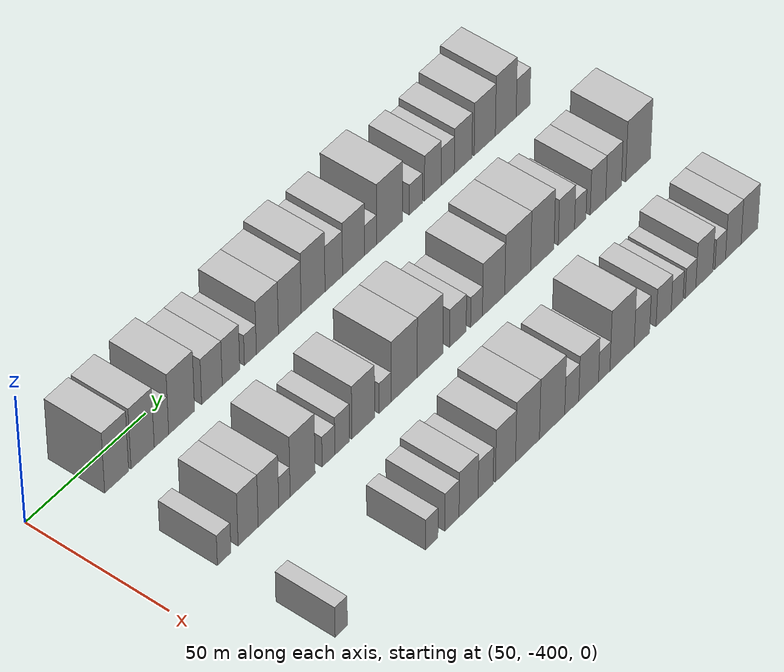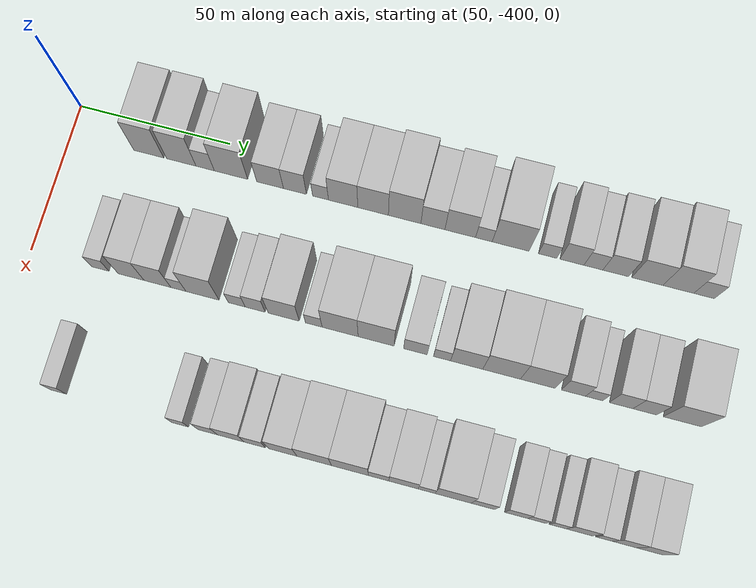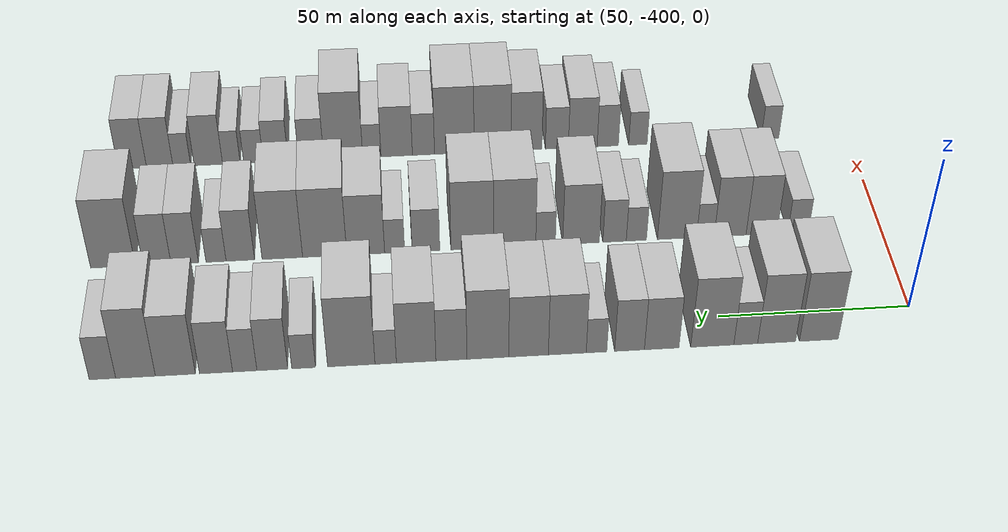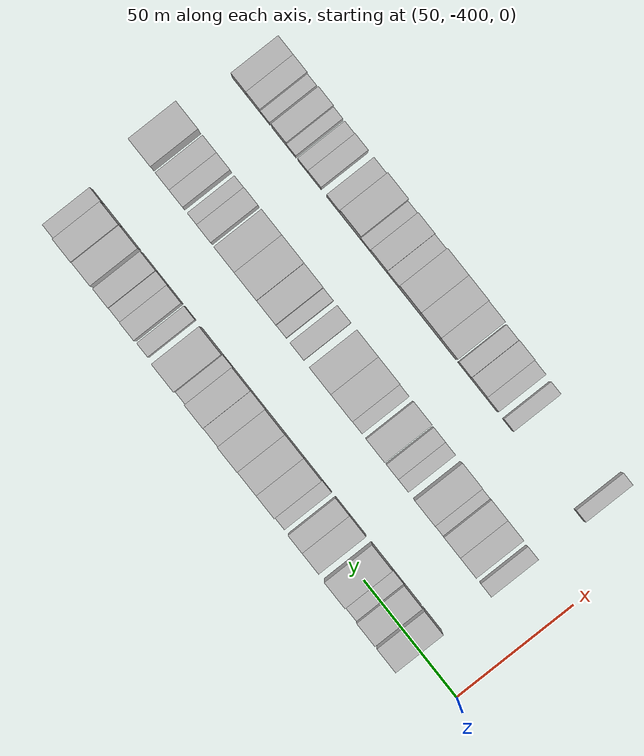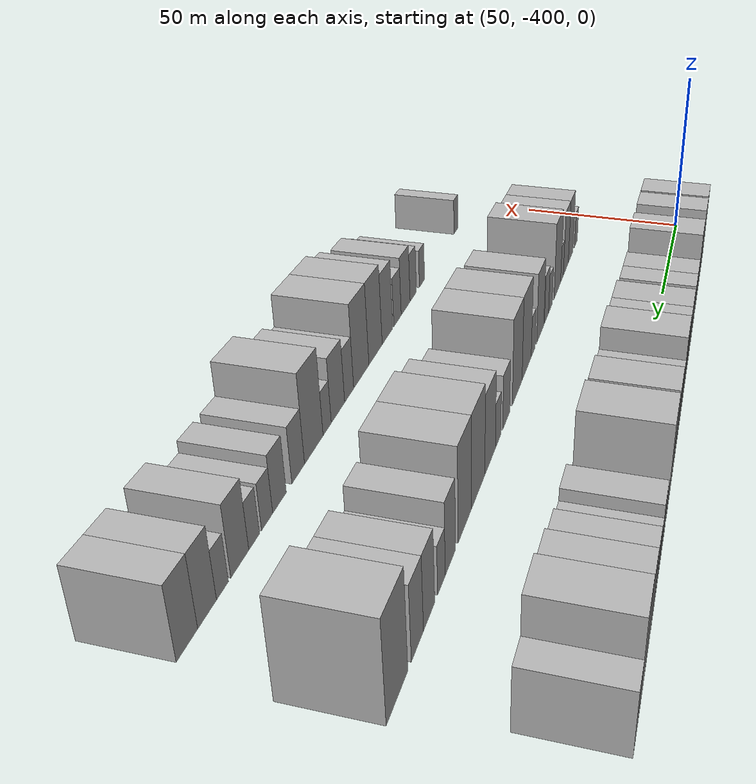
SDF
<sdf version="1.6">
 <world name="default">
  <model name="building_1">
   <static>1</static>
   <pose>50.0000 -374.0069 0 0.000000 0.000000 0.000000</pose>
   <link name="link">
    <pose>0 0 12.00 0 0 0</pose>
    <collision name="collision"><geometry><box><size>20.0000 9.9862 24.0000</size></box></geometry></collision>
    <visual name="visual">
     <cast_shadows>0</cast_shadows>
     <geometry><box><size>20.0000 9.9862 24.0000</size></box></geometry>
     <material>
      <script>
       <uri>model://HANNAS_wall/materials/scripts</uri>
       <uri>model://HANNAS_wall/materials/textures</uri>
       <name>vrc/HANNAS_wall</name>
      </script>
     </material>
    </visual>
   </link>
  </model>
  <model name="building_2">
   <static>1</static>
   <pose>50.0000 -363.1482 0 0.000000 0.000000 0.000000</pose>
   <link name="link">
    <pose>0 0 12.00 0 0 0</pose>
    <collision name="collision"><geometry><box><size>20.0000 9.7312 24.0000</size></box></geometry></collision>
    <visual name="visual">
     <cast_shadows>0</cast_shadows>
     <geometry><box><size>20.0000 9.7312 24.0000</size></box></geometry>
     <material>
      <script>
       <uri>model://HANNAS_wall/materials/scripts</uri>
       <uri>model://HANNAS_wall/materials/textures</uri>
       <name>vrc/HANNAS_wall</name>
      </script>
     </material>
    </visual>
   </link>
  </model>
  <model name="building_3">
   <static>1</static>
   <pose>50.0000 -355.2307 0 0.000000 0.000000 0.000000</pose>
   <link name="link">
    <pose>0 0 7.50 0 0 0</pose>
    <collision name="collision"><geometry><box><size>20.0000 6.1038 15.0000</size></box></geometry></collision>
    <visual name="visual">
     <cast_shadows>0</cast_shadows>
     <geometry><box><size>20.0000 6.1038 15.0000</size></box></geometry>
     <material>
      <script>
       <uri>model://HANNAS_wall/materials/scripts</uri>
       <uri>model://HANNAS_wall/materials/textures</uri>
       <name>vrc/HANNAS_wall</name>
      </script>
     </material>
    </visual>
   </link>
  </model>
  <model name="building_4">
   <static>1</static>
   <pose>50.0000 -346.6774 0 0.000000 0.000000 0.000000</pose>
   <link name="link">
    <pose>0 0 12.00 0 0 0</pose>
    <collision name="collision"><geometry><box><size>20.0000 11.0029 24.0000</size></box></geometry></collision>
    <visual name="visual">
     <cast_shadows>0</cast_shadows>
     <geometry><box><size>20.0000 11.0029 24.0000</size></box></geometry>
     <material>
      <script>
       <uri>model://HANNAS_wall/materials/scripts</uri>
       <uri>model://HANNAS_wall/materials/textures</uri>
       <name>vrc/HANNAS_wall</name>
      </script>
     </material>
    </visual>
   </link>
  </model>
  <model name="building_5">
   <static>1</static>
   <pose>50.0000 -333.7736 0 0.000000 0.000000 0.000000</pose>
   <link name="link">
    <pose>0 0 9.00 0 0 0</pose>
    <collision name="collision"><geometry><box><size>20.0000 8.8047 18.0000</size></box></geometry></collision>
    <visual name="visual">
     <cast_shadows>0</cast_shadows>
     <geometry><box><size>20.0000 8.8047 18.0000</size></box></geometry>
     <material>
      <script>
       <uri>model://HANNAS_wall/materials/scripts</uri>
       <uri>model://HANNAS_wall/materials/textures</uri>
       <name>vrc/HANNAS_wall</name>
      </script>
     </material>
    </visual>
   </link>
  </model>
  <model name="building_6">
   <static>1</static>
   <pose>50.0000 -325.5919 0 0.000000 0.000000 0.000000</pose>
   <link name="link">
    <pose>0 0 9.00 0 0 0</pose>
    <collision name="collision"><geometry><box><size>20.0000 7.5586 18.0000</size></box></geometry></collision>
    <visual name="visual">
     <cast_shadows>0</cast_shadows>
     <geometry><box><size>20.0000 7.5586 18.0000</size></box></geometry>
     <material>
      <script>
       <uri>model://HANNAS_wall/materials/scripts</uri>
       <uri>model://HANNAS_wall/materials/textures</uri>
       <name>vrc/HANNAS_wall</name>
      </script>
     </material>
    </visual>
   </link>
  </model>
  <model name="building_7">
   <static>1</static>
   <pose>50.0000 -317.2088 0 0.000000 0.000000 0.000000</pose>
   <link name="link">
    <pose>0 0 6.00 0 0 0</pose>
    <collision name="collision"><geometry><box><size>20.0000 5.2076 12.0000</size></box></geometry></collision>
    <visual name="visual">
     <cast_shadows>0</cast_shadows>
     <geometry><box><size>20.0000 5.2076 12.0000</size></box></geometry>
     <material>
      <script>
       <uri>model://HANNAS_wall/materials/scripts</uri>
       <uri>model://HANNAS_wall/materials/textures</uri>
       <name>vrc/HANNAS_wall</name>
      </script>
     </material>
    </visual>
   </link>
  </model>
  <model name="building_8">
   <static>1</static>
   <pose>50.0000 -309.8113 0 0.000000 0.000000 0.000000</pose>
   <link name="link">
    <pose>0 0 10.50 0 0 0</pose>
    <collision name="collision"><geometry><box><size>20.0000 9.5874 21.0000</size></box></geometry></collision>
    <visual name="visual">
     <cast_shadows>0</cast_shadows>
     <geometry><box><size>20.0000 9.5874 21.0000</size></box></geometry>
     <material>
      <script>
       <uri>model://HANNAS_wall/materials/scripts</uri>
       <uri>model://HANNAS_wall/materials/textures</uri>
       <name>vrc/HANNAS_wall</name>
      </script>
     </material>
    </visual>
   </link>
  </model>
  <model name="building_9">
   <static>1</static>
   <pose>50.0000 -300.0309 0 0.000000 0.000000 0.000000</pose>
   <link name="link">
    <pose>0 0 10.50 0 0 0</pose>
    <collision name="collision"><geometry><box><size>20.0000 9.9735 21.0000</size></box></geometry></collision>
    <visual name="visual">
     <cast_shadows>0</cast_shadows>
     <geometry><box><size>20.0000 9.9735 21.0000</size></box></geometry>
     <material>
      <script>
       <uri>model://HANNAS_wall/materials/scripts</uri>
       <uri>model://HANNAS_wall/materials/textures</uri>
       <name>vrc/HANNAS_wall</name>
      </script>
     </material>
    </visual>
   </link>
  </model>
  <model name="building_10">
   <static>1</static>
   <pose>50.0000 -289.7704 0 0.000000 0.000000 0.000000</pose>
   <link name="link">
    <pose>0 0 12.00 0 0 0</pose>
    <collision name="collision"><geometry><box><size>20.0000 10.5474 24.0000</size></box></geometry></collision>
    <visual name="visual">
     <cast_shadows>0</cast_shadows>
     <geometry><box><size>20.0000 10.5474 24.0000</size></box></geometry>
     <material>
      <script>
       <uri>model://HANNAS_wall/materials/scripts</uri>
       <uri>model://HANNAS_wall/materials/textures</uri>
       <name>vrc/HANNAS_wall</name>
      </script>
     </material>
    </visual>
   </link>
  </model>
  <model name="building_11">
   <static>1</static>
   <pose>50.0000 -280.6086 0 0.000000 0.000000 0.000000</pose>
   <link name="link">
    <pose>0 0 9.00 0 0 0</pose>
    <collision name="collision"><geometry><box><size>20.0000 7.7760 18.0000</size></box></geometry></collision>
    <visual name="visual">
     <cast_shadows>0</cast_shadows>
     <geometry><box><size>20.0000 7.7760 18.0000</size></box></geometry>
     <material>
      <script>
       <uri>model://HANNAS_wall/materials/scripts</uri>
       <uri>model://HANNAS_wall/materials/textures</uri>
       <name>vrc/HANNAS_wall</name>
      </script>
     </material>
    </visual>
   </link>
  </model>
  <model name="building_12">
   <static>1</static>
   <pose>50.0000 -271.7725 0 0.000000 0.000000 0.000000</pose>
   <link name="link">
    <pose>0 0 10.50 0 0 0</pose>
    <collision name="collision"><geometry><box><size>20.0000 9.8962 21.0000</size></box></geometry></collision>
    <visual name="visual">
     <cast_shadows>0</cast_shadows>
     <geometry><box><size>20.0000 9.8962 21.0000</size></box></geometry>
     <material>
      <script>
       <uri>model://HANNAS_wall/materials/scripts</uri>
       <uri>model://HANNAS_wall/materials/textures</uri>
       <name>vrc/HANNAS_wall</name>
      </script>
     </material>
    </visual>
   </link>
  </model>
  <model name="building_13">
   <static>1</static>
   <pose>50.0000 -264.1441 0 0.000000 0.000000 0.000000</pose>
   <link name="link">
    <pose>0 0 6.00 0 0 0</pose>
    <collision name="collision"><geometry><box><size>20.0000 5.3607 12.0000</size></box></geometry></collision>
    <visual name="visual">
     <cast_shadows>0</cast_shadows>
     <geometry><box><size>20.0000 5.3607 12.0000</size></box></geometry>
     <material>
      <script>
       <uri>model://HANNAS_wall/materials/scripts</uri>
       <uri>model://HANNAS_wall/materials/textures</uri>
       <name>vrc/HANNAS_wall</name>
      </script>
     </material>
    </visual>
   </link>
  </model>
  <model name="building_14">
   <static>1</static>
   <pose>50.0000 -255.5503 0 0.000000 0.000000 0.000000</pose>
   <link name="link">
    <pose>0 0 12.00 0 0 0</pose>
    <collision name="collision"><geometry><box><size>20.0000 11.8269 24.0000</size></box></geometry></collision>
    <visual name="visual">
     <cast_shadows>0</cast_shadows>
     <geometry><box><size>20.0000 11.8269 24.0000</size></box></geometry>
     <material>
      <script>
       <uri>model://HANNAS_wall/materials/scripts</uri>
       <uri>model://HANNAS_wall/materials/textures</uri>
       <name>vrc/HANNAS_wall</name>
      </script>
     </material>
    </visual>
   </link>
  </model>
  <model name="building_15">
   <static>1</static>
   <pose>50.0000 -243.6844 0 0.000000 0.000000 0.000000</pose>
   <link name="link">
    <pose>0 0 6.00 0 0 0</pose>
    <collision name="collision"><geometry><box><size>20.0000 5.9048 12.0000</size></box></geometry></collision>
    <visual name="visual">
     <cast_shadows>0</cast_shadows>
     <geometry><box><size>20.0000 5.9048 12.0000</size></box></geometry>
     <material>
      <script>
       <uri>model://HANNAS_wall/materials/scripts</uri>
       <uri>model://HANNAS_wall/materials/textures</uri>
       <name>vrc/HANNAS_wall</name>
      </script>
     </material>
    </visual>
   </link>
  </model>
  <model name="building_16">
   <static>1</static>
   <pose>50.0000 -235.9059 0 0.000000 0.000000 0.000000</pose>
   <link name="link">
    <pose>0 0 9.00 0 0 0</pose>
    <collision name="collision"><geometry><box><size>20.0000 7.6523 18.0000</size></box></geometry></collision>
    <visual name="visual">
     <cast_shadows>0</cast_shadows>
     <geometry><box><size>20.0000 7.6523 18.0000</size></box></geometry>
     <material>
      <script>
       <uri>model://HANNAS_wall/materials/scripts</uri>
       <uri>model://HANNAS_wall/materials/textures</uri>
       <name>vrc/HANNAS_wall</name>
      </script>
     </material>
    </visual>
   </link>
  </model>
  <model name="building_17">
   <static>1</static>
   <pose>50.0000 -229.0683 0 0.000000 0.000000 0.000000</pose>
   <link name="link">
    <pose>0 0 7.50 0 0 0</pose>
    <collision name="collision"><geometry><box><size>20.0000 6.0229 15.0000</size></box></geometry></collision>
    <visual name="visual">
     <cast_shadows>0</cast_shadows>
     <geometry><box><size>20.0000 6.0229 15.0000</size></box></geometry>
     <material>
      <script>
       <uri>model://HANNAS_wall/materials/scripts</uri>
       <uri>model://HANNAS_wall/materials/textures</uri>
       <name>vrc/HANNAS_wall</name>
      </script>
     </material>
    </visual>
   </link>
  </model>
  <model name="building_18">
   <static>1</static>
   <pose>50.0000 -221.9553 0 0.000000 0.000000 0.000000</pose>
   <link name="link">
    <pose>0 0 9.00 0 0 0</pose>
    <collision name="collision"><geometry><box><size>20.0000 8.2030 18.0000</size></box></geometry></collision>
    <visual name="visual">
     <cast_shadows>0</cast_shadows>
     <geometry><box><size>20.0000 8.2030 18.0000</size></box></geometry>
     <material>
      <script>
       <uri>model://HANNAS_wall/materials/scripts</uri>
       <uri>model://HANNAS_wall/materials/textures</uri>
       <name>vrc/HANNAS_wall</name>
      </script>
     </material>
    </visual>
   </link>
  </model>
  <model name="building_19">
   <static>1</static>
   <pose>50.0000 -211.9176 0 0.000000 0.000000 0.000000</pose>
   <link name="link">
    <pose>0 0 10.50 0 0 0</pose>
    <collision name="collision"><geometry><box><size>20.0000 9.8726 21.0000</size></box></geometry></collision>
    <visual name="visual">
     <cast_shadows>0</cast_shadows>
     <geometry><box><size>20.0000 9.8726 21.0000</size></box></geometry>
     <material>
      <script>
       <uri>model://HANNAS_wall/materials/scripts</uri>
       <uri>model://HANNAS_wall/materials/textures</uri>
       <name>vrc/HANNAS_wall</name>
      </script>
     </material>
    </visual>
   </link>
  </model>
  <model name="building_20">
   <static>1</static>
   <pose>50.0000 -202.0999 0 0.000000 0.000000 0.000000</pose>
   <link name="link">
    <pose>0 0 12.00 0 0 0</pose>
    <collision name="collision"><geometry><box><size>20.0000 9.7628 24.0000</size></box></geometry></collision>
    <visual name="visual">
     <cast_shadows>0</cast_shadows>
     <geometry><box><size>20.0000 9.7628 24.0000</size></box></geometry>
     <material>
      <script>
       <uri>model://HANNAS_wall/materials/scripts</uri>
       <uri>model://HANNAS_wall/materials/textures</uri>
       <name>vrc/HANNAS_wall</name>
      </script>
     </material>
    </visual>
   </link>
  </model>
  <model name="building_21">
   <static>1</static>
   <pose>50.0000 -193.9671 0 0.000000 0.000000 0.000000</pose>
   <link name="link">
    <pose>0 0 7.50 0 0 0</pose>
    <collision name="collision"><geometry><box><size>20.0000 6.5026 15.0000</size></box></geometry></collision>
    <visual name="visual">
     <cast_shadows>0</cast_shadows>
     <geometry><box><size>20.0000 6.5026 15.0000</size></box></geometry>
     <material>
      <script>
       <uri>model://HANNAS_wall/materials/scripts</uri>
       <uri>model://HANNAS_wall/materials/textures</uri>
       <name>vrc/HANNAS_wall</name>
      </script>
     </material>
    </visual>
   </link>
  </model>
  <model name="building_83">
   <static>1</static>
   <pose>90.0000 -377.1596 0 0.000000 0.000000 0.000000</pose>
   <link name="link">
    <pose>0 0 6.00 0 0 0</pose>
    <collision name="collision"><geometry><box><size>20.0000 5.6808 12.0000</size></box></geometry></collision>
    <visual name="visual">
     <cast_shadows>0</cast_shadows>
     <geometry><box><size>20.0000 5.6808 12.0000</size></box></geometry>
     <material>
      <script>
       <uri>model://HANNAS_wall/materials/scripts</uri>
       <uri>model://HANNAS_wall/materials/textures</uri>
       <name>vrc/HANNAS_wall</name>
      </script>
     </material>
    </visual>
   </link>
  </model>
  <model name="building_84">
   <static>1</static>
   <pose>90.0000 -367.0898 0 0.000000 0.000000 0.000000</pose>
   <link name="link">
    <pose>0 0 10.50 0 0 0</pose>
    <collision name="collision"><geometry><box><size>20.0000 8.4588 21.0000</size></box></geometry></collision>
    <visual name="visual">
     <cast_shadows>0</cast_shadows>
     <geometry><box><size>20.0000 8.4588 21.0000</size></box></geometry>
     <material>
      <script>
       <uri>model://HANNAS_wall/materials/scripts</uri>
       <uri>model://HANNAS_wall/materials/textures</uri>
       <name>vrc/HANNAS_wall</name>
      </script>
     </material>
    </visual>
   </link>
  </model>
  <model name="building_85">
   <static>1</static>
   <pose>90.0000 -358.4982 0 0.000000 0.000000 0.000000</pose>
   <link name="link">
    <pose>0 0 10.50 0 0 0</pose>
    <collision name="collision"><geometry><box><size>20.0000 8.7244 21.0000</size></box></geometry></collision>
    <visual name="visual">
     <cast_shadows>0</cast_shadows>
     <geometry><box><size>20.0000 8.7244 21.0000</size></box></geometry>
     <material>
      <script>
       <uri>model://HANNAS_wall/materials/scripts</uri>
       <uri>model://HANNAS_wall/materials/textures</uri>
       <name>vrc/HANNAS_wall</name>
      </script>
     </material>
    </visual>
   </link>
  </model>
  <model name="building_86">
   <static>1</static>
   <pose>90.0000 -351.7158 0 0.000000 0.000000 0.000000</pose>
   <link name="link">
    <pose>0 0 6.00 0 0 0</pose>
    <collision name="collision"><geometry><box><size>20.0000 4.8405 12.0000</size></box></geometry></collision>
    <visual name="visual">
     <cast_shadows>0</cast_shadows>
     <geometry><box><size>20.0000 4.8405 12.0000</size></box></geometry>
     <material>
      <script>
       <uri>model://HANNAS_wall/materials/scripts</uri>
       <uri>model://HANNAS_wall/materials/textures</uri>
       <name>vrc/HANNAS_wall</name>
      </script>
     </material>
    </visual>
   </link>
  </model>
  <model name="building_87">
   <static>1</static>
   <pose>90.0000 -343.9544 0 0.000000 0.000000 0.000000</pose>
   <link name="link">
    <pose>0 0 12.00 0 0 0</pose>
    <collision name="collision"><geometry><box><size>20.0000 10.6822 24.0000</size></box></geometry></collision>
    <visual name="visual">
     <cast_shadows>0</cast_shadows>
     <geometry><box><size>20.0000 10.6822 24.0000</size></box></geometry>
     <material>
      <script>
       <uri>model://HANNAS_wall/materials/scripts</uri>
       <uri>model://HANNAS_wall/materials/textures</uri>
       <name>vrc/HANNAS_wall</name>
      </script>
     </material>
    </visual>
   </link>
  </model>
  <model name="building_88">
   <static>1</static>
   <pose>90.0000 -332.8628 0 0.000000 0.000000 0.000000</pose>
   <link name="link">
    <pose>0 0 6.00 0 0 0</pose>
    <collision name="collision"><geometry><box><size>20.0000 5.5009 12.0000</size></box></geometry></collision>
    <visual name="visual">
     <cast_shadows>0</cast_shadows>
     <geometry><box><size>20.0000 5.5009 12.0000</size></box></geometry>
     <material>
      <script>
       <uri>model://HANNAS_wall/materials/scripts</uri>
       <uri>model://HANNAS_wall/materials/textures</uri>
       <name>vrc/HANNAS_wall</name>
      </script>
     </material>
    </visual>
   </link>
  </model>
  <model name="building_89">
   <static>1</static>
   <pose>90.0000 -326.9373 0 0.000000 0.000000 0.000000</pose>
   <link name="link">
    <pose>0 0 7.50 0 0 0</pose>
    <collision name="collision"><geometry><box><size>20.0000 6.3503 15.0000</size></box></geometry></collision>
    <visual name="visual">
     <cast_shadows>0</cast_shadows>
     <geometry><box><size>20.0000 6.3503 15.0000</size></box></geometry>
     <material>
      <script>
       <uri>model://HANNAS_wall/materials/scripts</uri>
       <uri>model://HANNAS_wall/materials/textures</uri>
       <name>vrc/HANNAS_wall</name>
      </script>
     </material>
    </visual>
   </link>
  </model>
  <model name="building_90">
   <static>1</static>
   <pose>90.0000 -317.7994 0 0.000000 0.000000 0.000000</pose>
   <link name="link">
    <pose>0 0 10.50 0 0 0</pose>
    <collision name="collision"><geometry><box><size>20.0000 9.9255 21.0000</size></box></geometry></collision>
    <visual name="visual">
     <cast_shadows>0</cast_shadows>
     <geometry><box><size>20.0000 9.9255 21.0000</size></box></geometry>
     <material>
      <script>
       <uri>model://HANNAS_wall/materials/scripts</uri>
       <uri>model://HANNAS_wall/materials/textures</uri>
       <name>vrc/HANNAS_wall</name>
      </script>
     </material>
    </visual>
   </link>
  </model>
  <model name="building_91">
   <static>1</static>
   <pose>90.0000 -308.1925 0 0.000000 0.000000 0.000000</pose>
   <link name="link">
    <pose>0 0 6.00 0 0 0</pose>
    <collision name="collision"><geometry><box><size>20.0000 5.2883 12.0000</size></box></geometry></collision>
    <visual name="visual">
     <cast_shadows>0</cast_shadows>
     <geometry><box><size>20.0000 5.2883 12.0000</size></box></geometry>
     <material>
      <script>
       <uri>model://HANNAS_wall/materials/scripts</uri>
       <uri>model://HANNAS_wall/materials/textures</uri>
       <name>vrc/HANNAS_wall</name>
      </script>
     </material>
    </visual>
   </link>
  </model>
  <model name="building_92">
   <static>1</static>
   <pose>90.0000 -299.8153 0 0.000000 0.000000 0.000000</pose>
   <link name="link">
    <pose>0 0 12.00 0 0 0</pose>
    <collision name="collision"><geometry><box><size>20.0000 11.4661 24.0000</size></box></geometry></collision>
    <visual name="visual">
     <cast_shadows>0</cast_shadows>
     <geometry><box><size>20.0000 11.4661 24.0000</size></box></geometry>
     <material>
      <script>
       <uri>model://HANNAS_wall/materials/scripts</uri>
       <uri>model://HANNAS_wall/materials/textures</uri>
       <name>vrc/HANNAS_wall</name>
      </script>
     </material>
    </visual>
   </link>
  </model>
  <model name="building_93">
   <static>1</static>
   <pose>90.0000 -288.3769 0 0.000000 0.000000 0.000000</pose>
   <link name="link">
    <pose>0 0 12.00 0 0 0</pose>
    <collision name="collision"><geometry><box><size>20.0000 11.4108 24.0000</size></box></geometry></collision>
    <visual name="visual">
     <cast_shadows>0</cast_shadows>
     <geometry><box><size>20.0000 11.4108 24.0000</size></box></geometry>
     <material>
      <script>
       <uri>model://HANNAS_wall/materials/scripts</uri>
       <uri>model://HANNAS_wall/materials/textures</uri>
       <name>vrc/HANNAS_wall</name>
      </script>
     </material>
    </visual>
   </link>
  </model>
  <model name="building_94">
   <static>1</static>
   <pose>90.0000 -275.9520 0 0.000000 0.000000 0.000000</pose>
   <link name="link">
    <pose>0 0 7.50 0 0 0</pose>
    <collision name="collision"><geometry><box><size>20.0000 7.4389 15.0000</size></box></geometry></collision>
    <visual name="visual">
     <cast_shadows>0</cast_shadows>
     <geometry><box><size>20.0000 7.4389 15.0000</size></box></geometry>
     <material>
      <script>
       <uri>model://HANNAS_wall/materials/scripts</uri>
       <uri>model://HANNAS_wall/materials/textures</uri>
       <name>vrc/HANNAS_wall</name>
      </script>
     </material>
    </visual>
   </link>
  </model>
  <model name="building_95">
   <static>1</static>
   <pose>90.0000 -267.5533 0 0.000000 0.000000 0.000000</pose>
   <link name="link">
    <pose>0 0 6.00 0 0 0</pose>
    <collision name="collision"><geometry><box><size>20.0000 5.3586 12.0000</size></box></geometry></collision>
    <visual name="visual">
     <cast_shadows>0</cast_shadows>
     <geometry><box><size>20.0000 5.3586 12.0000</size></box></geometry>
     <material>
      <script>
       <uri>model://HANNAS_wall/materials/scripts</uri>
       <uri>model://HANNAS_wall/materials/textures</uri>
       <name>vrc/HANNAS_wall</name>
      </script>
     </material>
    </visual>
   </link>
  </model>
  <model name="building_96">
   <static>1</static>
   <pose>90.0000 -259.8128 0 0.000000 0.000000 0.000000</pose>
   <link name="link">
    <pose>0 0 10.50 0 0 0</pose>
    <collision name="collision"><geometry><box><size>20.0000 10.1224 21.0000</size></box></geometry></collision>
    <visual name="visual">
     <cast_shadows>0</cast_shadows>
     <geometry><box><size>20.0000 10.1224 21.0000</size></box></geometry>
     <material>
      <script>
       <uri>model://HANNAS_wall/materials/scripts</uri>
       <uri>model://HANNAS_wall/materials/textures</uri>
       <name>vrc/HANNAS_wall</name>
      </script>
     </material>
    </visual>
   </link>
  </model>
  <model name="building_97">
   <static>1</static>
   <pose>90.0000 -248.8460 0 0.000000 0.000000 0.000000</pose>
   <link name="link">
    <pose>0 0 12.00 0 0 0</pose>
    <collision name="collision"><geometry><box><size>20.0000 11.8112 24.0000</size></box></geometry></collision>
    <visual name="visual">
     <cast_shadows>0</cast_shadows>
     <geometry><box><size>20.0000 11.8112 24.0000</size></box></geometry>
     <material>
      <script>
       <uri>model://HANNAS_wall/materials/scripts</uri>
       <uri>model://HANNAS_wall/materials/textures</uri>
       <name>vrc/HANNAS_wall</name>
      </script>
     </material>
    </visual>
   </link>
  </model>
  <model name="building_98">
   <static>1</static>
   <pose>90.0000 -237.5485 0 0.000000 0.000000 0.000000</pose>
   <link name="link">
    <pose>0 0 12.00 0 0 0</pose>
    <collision name="collision"><geometry><box><size>20.0000 10.7837 24.0000</size></box></geometry></collision>
    <visual name="visual">
     <cast_shadows>0</cast_shadows>
     <geometry><box><size>20.0000 10.7837 24.0000</size></box></geometry>
     <material>
      <script>
       <uri>model://HANNAS_wall/materials/scripts</uri>
       <uri>model://HANNAS_wall/materials/textures</uri>
       <name>vrc/HANNAS_wall</name>
      </script>
     </material>
    </visual>
   </link>
  </model>
  <model name="building_99">
   <static>1</static>
   <pose>90.0000 -226.3839 0 0.000000 0.000000 0.000000</pose>
   <link name="link">
    <pose>0 0 9.00 0 0 0</pose>
    <collision name="collision"><geometry><box><size>20.0000 7.5456 18.0000</size></box></geometry></collision>
    <visual name="visual">
     <cast_shadows>0</cast_shadows>
     <geometry><box><size>20.0000 7.5456 18.0000</size></box></geometry>
     <material>
      <script>
       <uri>model://HANNAS_wall/materials/scripts</uri>
       <uri>model://HANNAS_wall/materials/textures</uri>
       <name>vrc/HANNAS_wall</name>
      </script>
     </material>
    </visual>
   </link>
  </model>
  <model name="building_100">
   <static>1</static>
   <pose>90.0000 -219.9390 0 0.000000 0.000000 0.000000</pose>
   <link name="link">
    <pose>0 0 6.00 0 0 0</pose>
    <collision name="collision"><geometry><box><size>20.0000 5.3442 12.0000</size></box></geometry></collision>
    <visual name="visual">
     <cast_shadows>0</cast_shadows>
     <geometry><box><size>20.0000 5.3442 12.0000</size></box></geometry>
     <material>
      <script>
       <uri>model://HANNAS_wall/materials/scripts</uri>
       <uri>model://HANNAS_wall/materials/textures</uri>
       <name>vrc/HANNAS_wall</name>
      </script>
     </material>
    </visual>
   </link>
  </model>
  <model name="building_101">
   <static>1</static>
   <pose>90.0000 -211.6333 0 0.000000 0.000000 0.000000</pose>
   <link name="link">
    <pose>0 0 9.00 0 0 0</pose>
    <collision name="collision"><geometry><box><size>20.0000 7.2674 18.0000</size></box></geometry></collision>
    <visual name="visual">
     <cast_shadows>0</cast_shadows>
     <geometry><box><size>20.0000 7.2674 18.0000</size></box></geometry>
     <material>
      <script>
       <uri>model://HANNAS_wall/materials/scripts</uri>
       <uri>model://HANNAS_wall/materials/textures</uri>
       <name>vrc/HANNAS_wall</name>
      </script>
     </material>
    </visual>
   </link>
  </model>
  <model name="building_102">
   <static>1</static>
   <pose>90.0000 -204.3093 0 0.000000 0.000000 0.000000</pose>
   <link name="link">
    <pose>0 0 9.00 0 0 0</pose>
    <collision name="collision"><geometry><box><size>20.0000 7.3806 18.0000</size></box></geometry></collision>
    <visual name="visual">
     <cast_shadows>0</cast_shadows>
     <geometry><box><size>20.0000 7.3806 18.0000</size></box></geometry>
     <material>
      <script>
       <uri>model://HANNAS_wall/materials/scripts</uri>
       <uri>model://HANNAS_wall/materials/textures</uri>
       <name>vrc/HANNAS_wall</name>
      </script>
     </material>
    </visual>
   </link>
  </model>
  <model name="building_103">
   <static>1</static>
   <pose>90.0000 -192.7226 0 0.000000 0.000000 0.000000</pose>
   <link name="link">
    <pose>0 0 12.00 0 0 0</pose>
    <collision name="collision"><geometry><box><size>20.0000 11.7929 24.0000</size></box></geometry></collision>
    <visual name="visual">
     <cast_shadows>0</cast_shadows>
     <geometry><box><size>20.0000 11.7929 24.0000</size></box></geometry>
     <material>
      <script>
       <uri>model://HANNAS_wall/materials/scripts</uri>
       <uri>model://HANNAS_wall/materials/textures</uri>
       <name>vrc/HANNAS_wall</name>
      </script>
     </material>
    </visual>
   </link>
  </model>
  <model name="building_163">
   <static>1</static>
   <pose>130.0000 -377.4311 0 0.000000 0.000000 0.000000</pose>
   <link name="link">
    <pose>0 0 6.00 0 0 0</pose>
    <collision name="collision"><geometry><box><size>20.0000 5.1377 12.0000</size></box></geometry></collision>
    <visual name="visual">
     <cast_shadows>0</cast_shadows>
     <geometry><box><size>20.0000 5.1377 12.0000</size></box></geometry>
     <material>
      <script>
       <uri>model://HANNAS_wall/materials/scripts</uri>
       <uri>model://HANNAS_wall/materials/textures</uri>
       <name>vrc/HANNAS_wall</name>
      </script>
     </material>
    </visual>
   </link>
  </model>
  <model name="building_164">
   <static>1</static>
   <pose>130.0000 -338.8480 0 0.000000 0.000000 0.000000</pose>
   <link name="link">
    <pose>0 0 6.00 0 0 0</pose>
    <collision name="collision"><geometry><box><size>20.0000 5.3428 12.0000</size></box></geometry></collision>
    <visual name="visual">
     <cast_shadows>0</cast_shadows>
     <geometry><box><size>20.0000 5.3428 12.0000</size></box></geometry>
     <material>
      <script>
       <uri>model://HANNAS_wall/materials/scripts</uri>
       <uri>model://HANNAS_wall/materials/textures</uri>
       <name>vrc/HANNAS_wall</name>
      </script>
     </material>
    </visual>
   </link>
  </model>
  <model name="building_165">
   <static>1</static>
   <pose>130.0000 -330.0990 0 0.000000 0.000000 0.000000</pose>
   <link name="link">
    <pose>0 0 7.50 0 0 0</pose>
    <collision name="collision"><geometry><box><size>20.0000 6.1552 15.0000</size></box></geometry></collision>
    <visual name="visual">
     <cast_shadows>0</cast_shadows>
     <geometry><box><size>20.0000 6.1552 15.0000</size></box></geometry>
     <material>
      <script>
       <uri>model://HANNAS_wall/materials/scripts</uri>
       <uri>model://HANNAS_wall/materials/textures</uri>
       <name>vrc/HANNAS_wall</name>
      </script>
     </material>
    </visual>
   </link>
  </model>
  <model name="building_166">
   <static>1</static>
   <pose>130.0000 -322.8522 0 0.000000 0.000000 0.000000</pose>
   <link name="link">
    <pose>0 0 9.00 0 0 0</pose>
    <collision name="collision"><geometry><box><size>20.0000 8.3384 18.0000</size></box></geometry></collision>
    <visual name="visual">
     <cast_shadows>0</cast_shadows>
     <geometry><box><size>20.0000 8.3384 18.0000</size></box></geometry>
     <material>
      <script>
       <uri>model://HANNAS_wall/materials/scripts</uri>
       <uri>model://HANNAS_wall/materials/textures</uri>
       <name>vrc/HANNAS_wall</name>
      </script>
     </material>
    </visual>
   </link>
  </model>
  <model name="building_167">
   <static>1</static>
   <pose>130.0000 -315.3662 0 0.000000 0.000000 0.000000</pose>
   <link name="link">
    <pose>0 0 7.50 0 0 0</pose>
    <collision name="collision"><geometry><box><size>20.0000 6.6337 15.0000</size></box></geometry></collision>
    <visual name="visual">
     <cast_shadows>0</cast_shadows>
     <geometry><box><size>20.0000 6.6337 15.0000</size></box></geometry>
     <material>
      <script>
       <uri>model://HANNAS_wall/materials/scripts</uri>
       <uri>model://HANNAS_wall/materials/textures</uri>
       <name>vrc/HANNAS_wall</name>
      </script>
     </material>
    </visual>
   </link>
  </model>
  <model name="building_168">
   <static>1</static>
   <pose>130.0000 -306.5958 0 0.000000 0.000000 0.000000</pose>
   <link name="link">
    <pose>0 0 10.50 0 0 0</pose>
    <collision name="collision"><geometry><box><size>20.0000 8.9071 21.0000</size></box></geometry></collision>
    <visual name="visual">
     <cast_shadows>0</cast_shadows>
     <geometry><box><size>20.0000 8.9071 21.0000</size></box></geometry>
     <material>
      <script>
       <uri>model://HANNAS_wall/materials/scripts</uri>
       <uri>model://HANNAS_wall/materials/textures</uri>
       <name>vrc/HANNAS_wall</name>
      </script>
     </material>
    </visual>
   </link>
  </model>
  <model name="building_169">
   <static>1</static>
   <pose>130.0000 -296.8256 0 0.000000 0.000000 0.000000</pose>
   <link name="link">
    <pose>0 0 12.00 0 0 0</pose>
    <collision name="collision"><geometry><box><size>20.0000 10.6332 24.0000</size></box></geometry></collision>
    <visual name="visual">
     <cast_shadows>0</cast_shadows>
     <geometry><box><size>20.0000 10.6332 24.0000</size></box></geometry>
     <material>
      <script>
       <uri>model://HANNAS_wall/materials/scripts</uri>
       <uri>model://HANNAS_wall/materials/textures</uri>
       <name>vrc/HANNAS_wall</name>
      </script>
     </material>
    </visual>
   </link>
  </model>
  <model name="building_170">
   <static>1</static>
   <pose>130.0000 -285.8255 0 0.000000 0.000000 0.000000</pose>
   <link name="link">
    <pose>0 0 12.00 0 0 0</pose>
    <collision name="collision"><geometry><box><size>20.0000 11.3670 24.0000</size></box></geometry></collision>
    <visual name="visual">
     <cast_shadows>0</cast_shadows>
     <geometry><box><size>20.0000 11.3670 24.0000</size></box></geometry>
     <material>
      <script>
       <uri>model://HANNAS_wall/materials/scripts</uri>
       <uri>model://HANNAS_wall/materials/textures</uri>
       <name>vrc/HANNAS_wall</name>
      </script>
     </material>
    </visual>
   </link>
  </model>
  <model name="building_171">
   <static>1</static>
   <pose>130.0000 -276.9696 0 0.000000 0.000000 0.000000</pose>
   <link name="link">
    <pose>0 0 7.50 0 0 0</pose>
    <collision name="collision"><geometry><box><size>20.0000 6.3449 15.0000</size></box></geometry></collision>
    <visual name="visual">
     <cast_shadows>0</cast_shadows>
     <geometry><box><size>20.0000 6.3449 15.0000</size></box></geometry>
     <material>
      <script>
       <uri>model://HANNAS_wall/materials/scripts</uri>
       <uri>model://HANNAS_wall/materials/textures</uri>
       <name>vrc/HANNAS_wall</name>
      </script>
     </material>
    </visual>
   </link>
  </model>
  <model name="building_172">
   <static>1</static>
   <pose>130.0000 -269.3147 0 0.000000 0.000000 0.000000</pose>
   <link name="link">
    <pose>0 0 9.00 0 0 0</pose>
    <collision name="collision"><geometry><box><size>20.0000 8.9649 18.0000</size></box></geometry></collision>
    <visual name="visual">
     <cast_shadows>0</cast_shadows>
     <geometry><box><size>20.0000 8.9649 18.0000</size></box></geometry>
     <material>
      <script>
       <uri>model://HANNAS_wall/materials/scripts</uri>
       <uri>model://HANNAS_wall/materials/textures</uri>
       <name>vrc/HANNAS_wall</name>
      </script>
     </material>
    </visual>
   </link>
  </model>
  <model name="building_173">
   <static>1</static>
   <pose>130.0000 -262.2223 0 0.000000 0.000000 0.000000</pose>
   <link name="link">
    <pose>0 0 6.00 0 0 0</pose>
    <collision name="collision"><geometry><box><size>20.0000 5.2198 12.0000</size></box></geometry></collision>
    <visual name="visual">
     <cast_shadows>0</cast_shadows>
     <geometry><box><size>20.0000 5.2198 12.0000</size></box></geometry>
     <material>
      <script>
       <uri>model://HANNAS_wall/materials/scripts</uri>
       <uri>model://HANNAS_wall/materials/textures</uri>
       <name>vrc/HANNAS_wall</name>
      </script>
     </material>
    </visual>
   </link>
  </model>
  <model name="building_174">
   <static>1</static>
   <pose>130.0000 -254.0522 0 0.000000 0.000000 0.000000</pose>
   <link name="link">
    <pose>0 0 12.00 0 0 0</pose>
    <collision name="collision"><geometry><box><size>20.0000 11.1204 24.0000</size></box></geometry></collision>
    <visual name="visual">
     <cast_shadows>0</cast_shadows>
     <geometry><box><size>20.0000 11.1204 24.0000</size></box></geometry>
     <material>
      <script>
       <uri>model://HANNAS_wall/materials/scripts</uri>
       <uri>model://HANNAS_wall/materials/textures</uri>
       <name>vrc/HANNAS_wall</name>
      </script>
     </material>
    </visual>
   </link>
  </model>
  <model name="building_175">
   <static>1</static>
   <pose>130.0000 -244.9197 0 0.000000 0.000000 0.000000</pose>
   <link name="link">
    <pose>0 0 7.50 0 0 0</pose>
    <collision name="collision"><geometry><box><size>20.0000 7.1445 15.0000</size></box></geometry></collision>
    <visual name="visual">
     <cast_shadows>0</cast_shadows>
     <geometry><box><size>20.0000 7.1445 15.0000</size></box></geometry>
     <material>
      <script>
       <uri>model://HANNAS_wall/materials/scripts</uri>
       <uri>model://HANNAS_wall/materials/textures</uri>
       <name>vrc/HANNAS_wall</name>
      </script>
     </material>
    </visual>
   </link>
  </model>
  <model name="building_176">
   <static>1</static>
   <pose>130.0000 -234.8259 0 0.000000 0.000000 0.000000</pose>
   <link name="link">
    <pose>0 0 7.50 0 0 0</pose>
    <collision name="collision"><geometry><box><size>20.0000 7.0432 15.0000</size></box></geometry></collision>
    <visual name="visual">
     <cast_shadows>0</cast_shadows>
     <geometry><box><size>20.0000 7.0432 15.0000</size></box></geometry>
     <material>
      <script>
       <uri>model://HANNAS_wall/materials/scripts</uri>
       <uri>model://HANNAS_wall/materials/textures</uri>
       <name>vrc/HANNAS_wall</name>
      </script>
     </material>
    </visual>
   </link>
  </model>
  <model name="building_177">
   <static>1</static>
   <pose>130.0000 -228.5327 0 0.000000 0.000000 0.000000</pose>
   <link name="link">
    <pose>0 0 6.00 0 0 0</pose>
    <collision name="collision"><geometry><box><size>20.0000 5.5432 12.0000</size></box></geometry></collision>
    <visual name="visual">
     <cast_shadows>0</cast_shadows>
     <geometry><box><size>20.0000 5.5432 12.0000</size></box></geometry>
     <material>
      <script>
       <uri>model://HANNAS_wall/materials/scripts</uri>
       <uri>model://HANNAS_wall/materials/textures</uri>
       <name>vrc/HANNAS_wall</name>
      </script>
     </material>
    </visual>
   </link>
  </model>
  <model name="building_178">
   <static>1</static>
   <pose>130.0000 -222.2620 0 0.000000 0.000000 0.000000</pose>
   <link name="link">
    <pose>0 0 6.00 0 0 0</pose>
    <collision name="collision"><geometry><box><size>20.0000 4.9982 12.0000</size></box></geometry></collision>
    <visual name="visual">
     <cast_shadows>0</cast_shadows>
     <geometry><box><size>20.0000 4.9982 12.0000</size></box></geometry>
     <material>
      <script>
       <uri>model://HANNAS_wall/materials/scripts</uri>
       <uri>model://HANNAS_wall/materials/textures</uri>
       <name>vrc/HANNAS_wall</name>
      </script>
     </material>
    </visual>
   </link>
  </model>
  <model name="building_179">
   <static>1</static>
   <pose>130.0000 -215.7515 0 0.000000 0.000000 0.000000</pose>
   <link name="link">
    <pose>0 0 9.00 0 0 0</pose>
    <collision name="collision"><geometry><box><size>20.0000 8.0229 18.0000</size></box></geometry></collision>
    <visual name="visual">
     <cast_shadows>0</cast_shadows>
     <geometry><box><size>20.0000 8.0229 18.0000</size></box></geometry>
     <material>
      <script>
       <uri>model://HANNAS_wall/materials/scripts</uri>
       <uri>model://HANNAS_wall/materials/textures</uri>
       <name>vrc/HANNAS_wall</name>
      </script>
     </material>
    </visual>
   </link>
  </model>
  <model name="building_180">
   <static>1</static>
   <pose>130.0000 -208.2446 0 0.000000 0.000000 0.000000</pose>
   <link name="link">
    <pose>0 0 6.00 0 0 0</pose>
    <collision name="collision"><geometry><box><size>20.0000 4.9909 12.0000</size></box></geometry></collision>
    <visual name="visual">
     <cast_shadows>0</cast_shadows>
     <geometry><box><size>20.0000 4.9909 12.0000</size></box></geometry>
     <material>
      <script>
       <uri>model://HANNAS_wall/materials/scripts</uri>
       <uri>model://HANNAS_wall/materials/textures</uri>
       <name>vrc/HANNAS_wall</name>
      </script>
     </material>
    </visual>
   </link>
  </model>
  <model name="building_181">
   <static>1</static>
   <pose>130.0000 -202.0310 0 0.000000 0.000000 0.000000</pose>
   <link name="link">
    <pose>0 0 9.00 0 0 0</pose>
    <collision name="collision"><geometry><box><size>20.0000 7.4362 18.0000</size></box></geometry></collision>
    <visual name="visual">
     <cast_shadows>0</cast_shadows>
     <geometry><box><size>20.0000 7.4362 18.0000</size></box></geometry>
     <material>
      <script>
       <uri>model://HANNAS_wall/materials/scripts</uri>
       <uri>model://HANNAS_wall/materials/textures</uri>
       <name>vrc/HANNAS_wall</name>
      </script>
     </material>
    </visual>
   </link>
  </model>
  <model name="building_182">
   <static>1</static>
   <pose>130.0000 -194.3300 0 0.000000 0.000000 0.000000</pose>
   <link name="link">
    <pose>0 0 9.00 0 0 0</pose>
    <collision name="collision"><geometry><box><size>20.0000 7.9658 18.0000</size></box></geometry></collision>
    <visual name="visual">
     <cast_shadows>0</cast_shadows>
     <geometry><box><size>20.0000 7.9658 18.0000</size></box></geometry>
     <material>
      <script>
       <uri>model://HANNAS_wall/materials/scripts</uri>
       <uri>model://HANNAS_wall/materials/textures</uri>
       <name>vrc/HANNAS_wall</name>
      </script>
     </material>
    </visual>
   </link>
  </model>
 </world>
</sdf>
